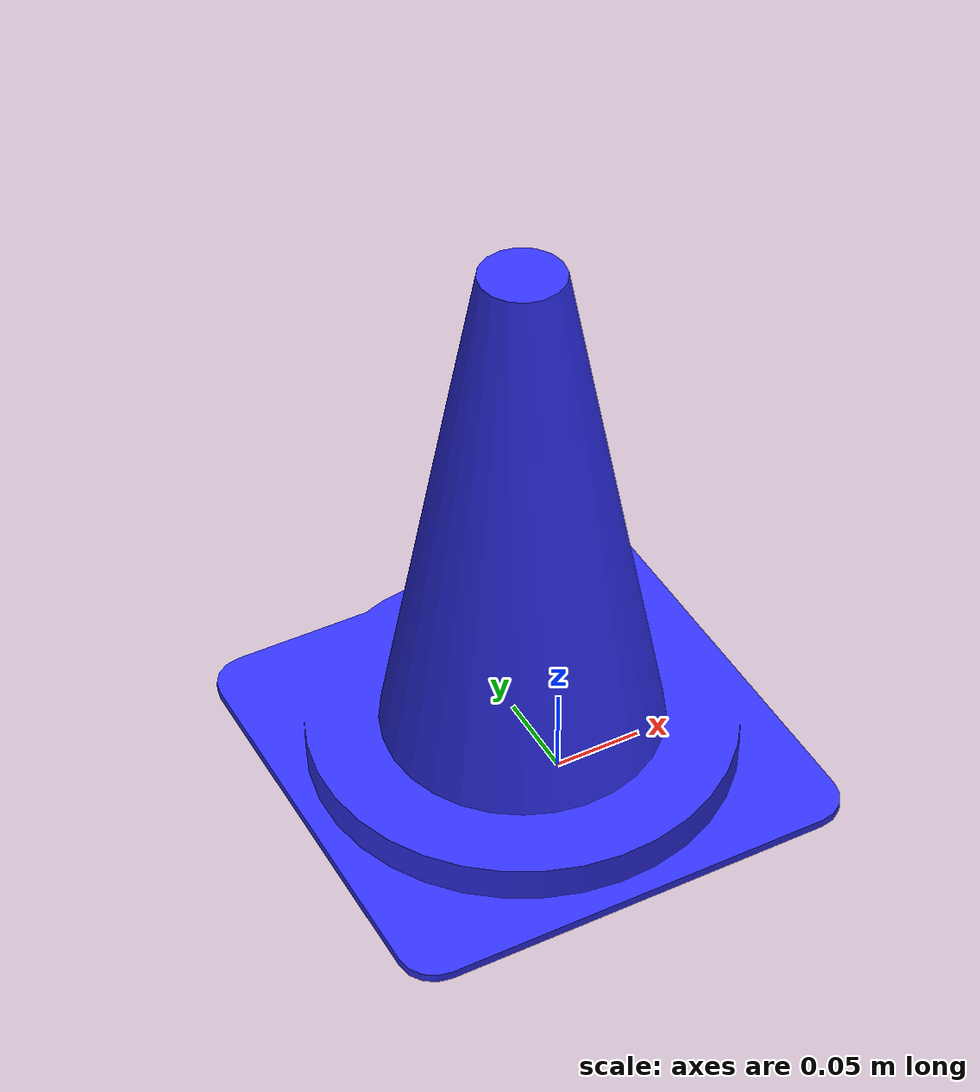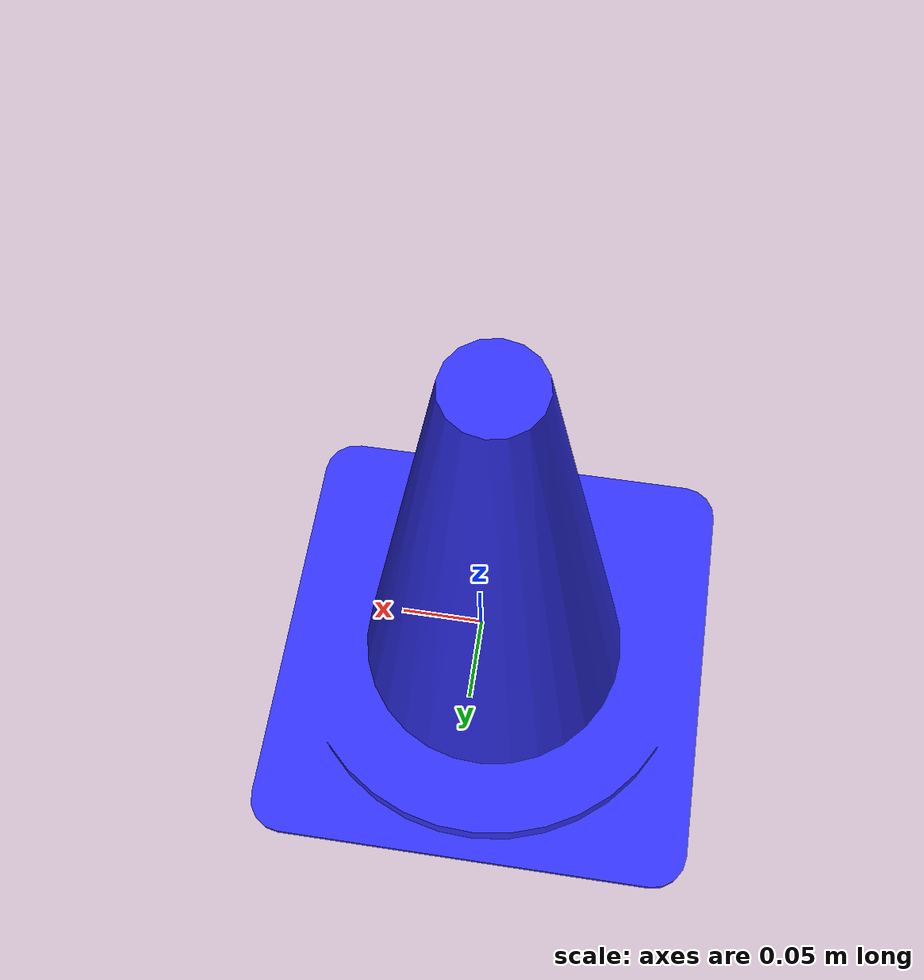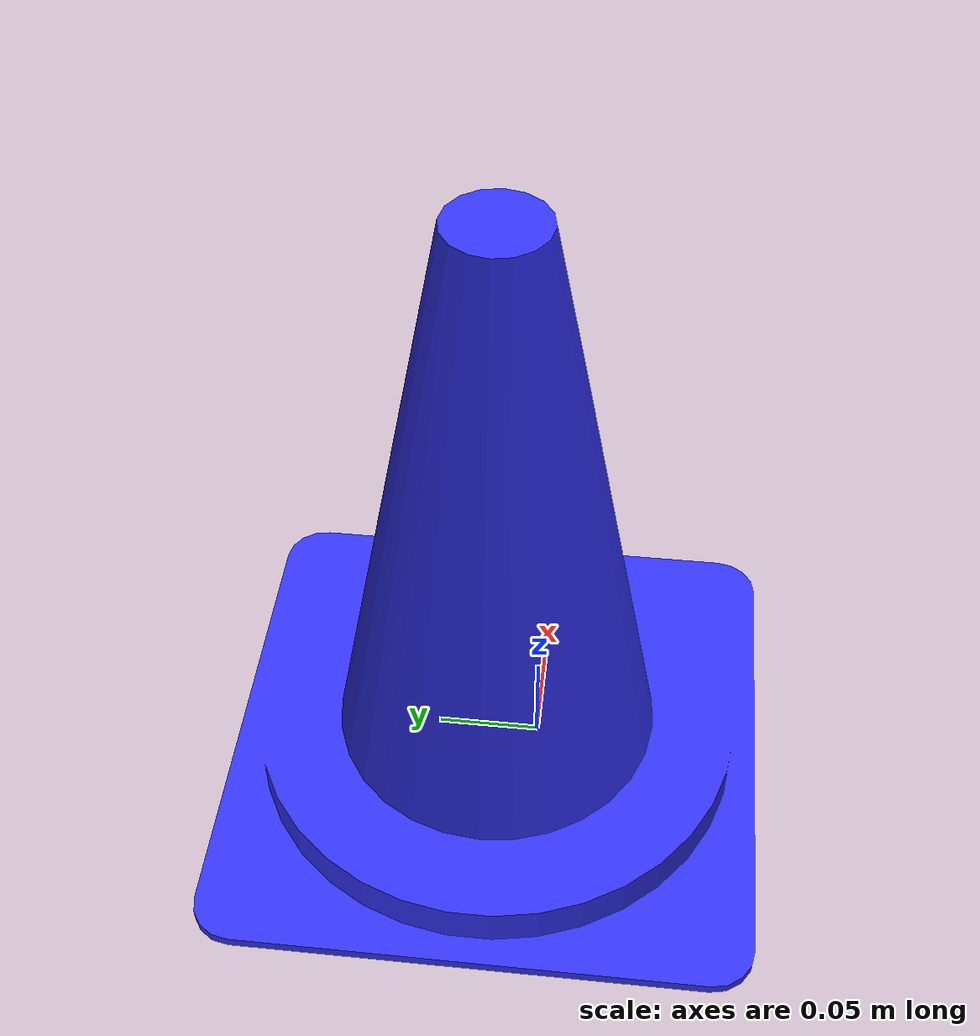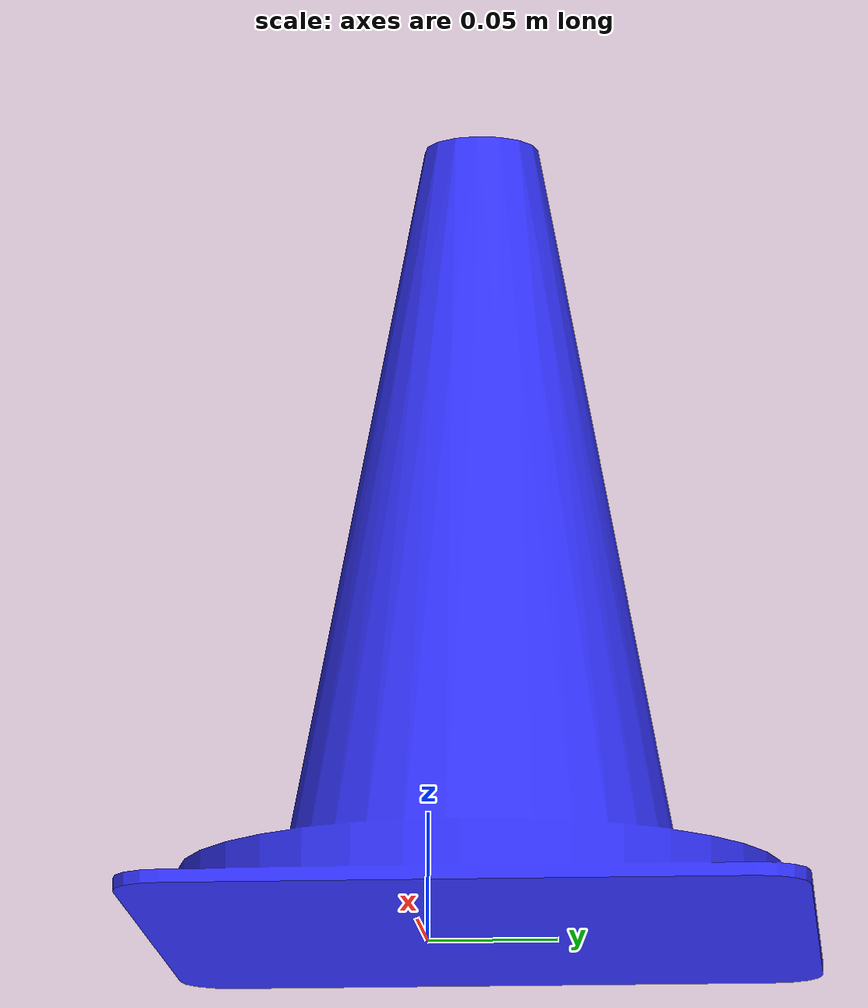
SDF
<?xml version="1.0" ?>
<sdf version="1.6">
  <model name="cone_blue">
    <static>0</static>
    <link name="link">
      <inertial>
        <pose>0 0 0 0 0 0</pose>
        <mass>0.5</mass>
        <inertia>
          <ixx>0.01</ixx>
          <ixy>0</ixy>
          <ixz>0</ixz>
          <iyy>0.005</iyy>
          <iyz>0</iyz>
          <izz>0.01</izz>
        </inertia>
      </inertial>

      <collision name="collision">
	<pose>0 0 0 0 0 0</pose>
        <geometry>
          <box>
            <size>0.05 0.02 0.03</size>
          </box>
        </geometry>
      </collision>

      <visual name="visual">
	<pose>0 0 0 0 0 0</pose>
         <geometry>
           <mesh>
             <uri>model://cone_blue/meshes/cone.dae</uri>
           </mesh>
         </geometry>

         <material>
    	  <ambient>0.2 0.2 1 1</ambient>
    	  <diffuse>0.2 0.2 1 1</diffuse>
    	  <specular>0.1 0.1 0.1 1</specular>
    	  <emissive>0 0 0 0</emissive>
  	</material>
       </visual>
    </link>
  </model>
</sdf>
